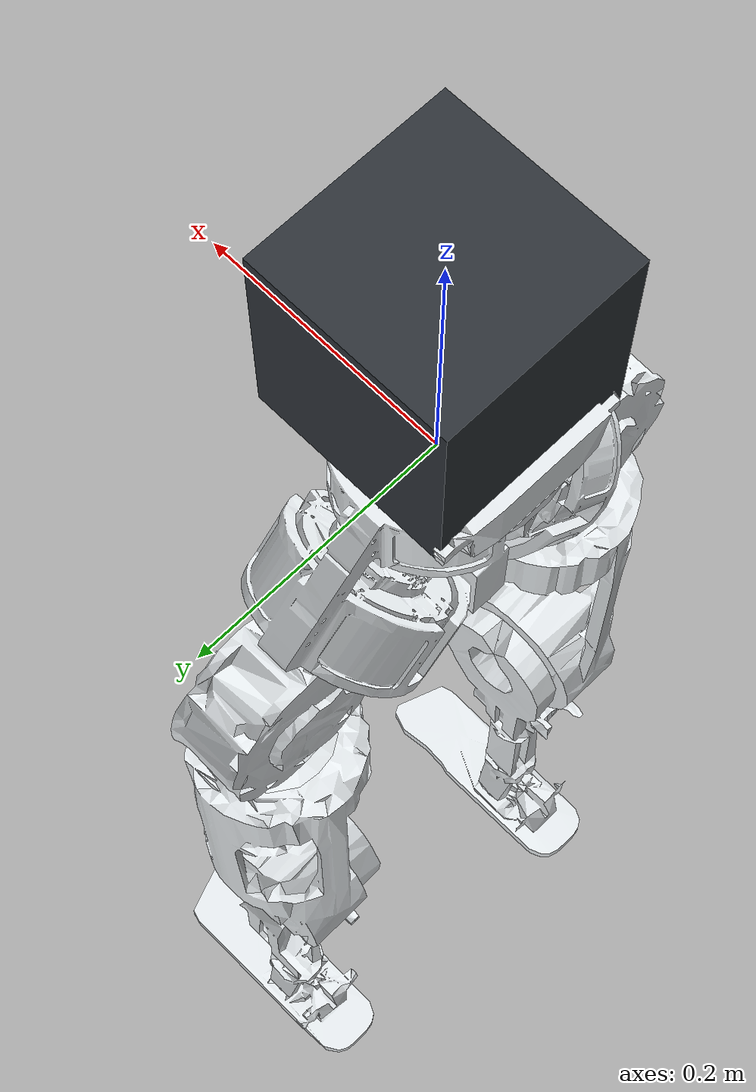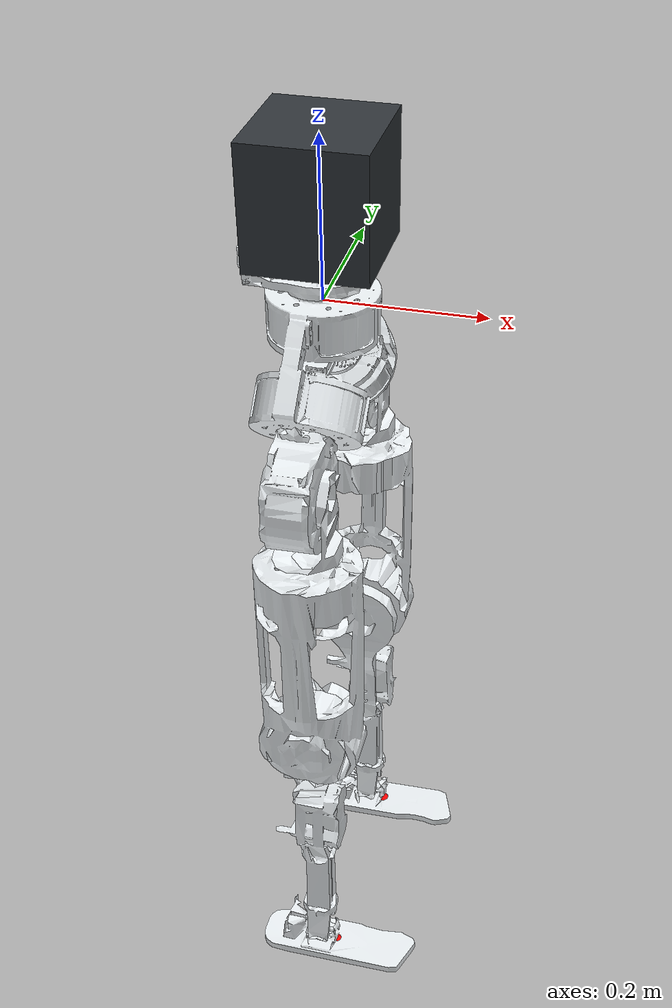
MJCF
<mujoco model="lowbody_capsule">
  <compiler angle="radian" meshdir="assets/" />
  <asset>
    <mesh name="base_link" file="base_link.STL" />
    <mesh name="waist_yaw_link" file="waist_yaw_link.STL" />
    <mesh name="waist_roll_link" file="waist_roll_link.STL" />
    <mesh name="left_hip_pitch_link" file="left_hip_pitch_link.STL" />
    <mesh name="left_hip_roll_link" file="left_hip_roll_link.STL" />
    <mesh name="left_hip_yaw_link" file="left_hip_yaw_link.STL" />
    <mesh name="left_knee_link" file="left_knee_link.STL" />
    <mesh name="left_ankle_pitch_link" file="left_ankle_pitch_link.STL" />
    <mesh name="left_ankle_roll_link" file="left_ankle_roll_link.STL" />
    <mesh name="right_hip_pitch_link" file="right_hip_pitch_link.STL" />
    <mesh name="right_hip_roll_link" file="right_hip_roll_link.STL" />
    <mesh name="right_hip_yaw_link" file="right_hip_yaw_link.STL" />
    <mesh name="right_knee_link" file="right_knee_link.STL" />
    <mesh name="right_ankle_pitch_link" file="right_ankle_pitch_link.STL" />
    <mesh name="right_ankle_roll_link" file="right_ankle_roll_link.STL" />
    <material name="base_link_mat" rgba="0.898 0.9176 0.9294 1" specular="0" />
    <material name="waist_yaw_link_mat" rgba="0.898 0.9176 0.9294 1" specular="0" />
    <material name="waist_roll_link_mat" rgba="0.898 0.9176 0.9294 1" specular="0" />
    <material name="left_hip_pitch_link_mat" rgba="0.898 0.9176 0.9294 1" specular="0" />
    <material name="left_hip_roll_link_mat" rgba="0.898 0.9176 0.9294 1" specular="0" />
    <material name="left_hip_yaw_link_mat" rgba="0.898 0.9176 0.9294 1" specular="0" />
    <material name="left_knee_link_mat" rgba="0.898 0.9176 0.9294 1" specular="0" />
    <material name="left_ankle_pitch_link_mat" rgba="0.898 0.9176 0.9294 1" specular="0" />
    <material name="left_ankle_roll_link_mat" rgba="0.898 0.9176 0.9294 1" specular="0" />
    <material name="right_hip_pitch_link_mat" rgba="0.898 0.9176 0.9294 1" specular="0" />
    <material name="right_hip_roll_link_mat" rgba="0.898 0.9176 0.9294 1" specular="0" />
    <material name="right_hip_yaw_link_mat" rgba="0.898 0.9176 0.9294 1" specular="0" />
    <material name="right_knee_link_mat" rgba="0.898 0.9176 0.9294 1" specular="0" />
    <material name="right_ankle_pitch_link_mat" rgba="0.898 0.9176 0.9294 1" specular="0" />
    <material name="right_ankle_roll_link_mat" rgba="0.898 0.9176 0.9294 1" specular="0" />
    <material name="waist_payload_mat" rgba="0.18 0.2 0.22 1" specular="0" />
  </asset>

  <worldbody>
    <body name="base_link" pos="0 0 0">
      <freejoint/>
      <inertial
        pos="-0.0009132 0.000016 -0.0779084"
        mass="6.4215738"
        fullinertia="0.0186218 0.0112883 0.0157697 -0.0000004 -0.0000523 -0.0000001"
      />
      <geom pos="0 0 0" group="1" contype="0" conaffinity="0" material="base_link_mat" type="mesh" mesh="base_link" />
      <geom name="base_link_collision" pos="0 0 0" rgba="0.9373 0.2667 0.2667 1" group="3" contype="1" conaffinity="1" type="mesh" mesh="base_link" />
      <site name="imu_in_base_link" size="0.01" pos="-0.01 0 -0.09" group="5" rgba="1 0 0 1" />
      <body name="waist_payload_link" pos="0 0 0.135">
        <inertial pos="0 0 0" mass="4" diaginertia="0.015 0.015 0.015" />
        <geom
          name="waist_payload"
          pos="0 0 0"
          group="1"
          contype="0"
          conaffinity="0"
          material="waist_payload_mat"
          type="box"
          size="0.075 0.075 0.075"
        />
        <geom
          name="waist_payload_collision"
          pos="0 0 0"
          rgba="0.9373 0.2667 0.2667 1"
          group="3"
          contype="1"
          conaffinity="1"
          type="box"
          size="0.075 0.075 0.075"
        />
      </body>
      <body name="waist_yaw_link" pos="0 0 0.007">
        <inertial pos="-0.0259888 0 0.0360763" mass="0.9641464" fullinertia="0.0005716 0.0006786 0.001122 0 0.0000066 0"/>
        <geom pos="0 0 0" group="1" contype="0" conaffinity="0" material="waist_yaw_link_mat" type="mesh" mesh="waist_yaw_link" />
        <body name="waist_roll_link" pos="-0.027 0 0.062">
          <inertial pos="0.0269999 0 -0.0000001" mass="0.0365367" diaginertia="0.0000058 0.0000043 0.0000088"/>
          <geom pos="0 0 0" group="1" contype="0" conaffinity="0" material="waist_roll_link_mat" type="mesh" mesh="waist_roll_link" />
        </body>
      </body>
      <body name="left_hip_pitch_link" pos="0 0.088214 -0.12639">
        <joint name="left_hip_pitch_joint" type="hinge" axis="0 0.70711 -0.70711" limited="true" range="-2.384 2.466" damping="0" frictionloss="0"/>
        <inertial pos="0.0035805 0.0540167 -0.053752" mass="2.0704946" fullinertia="0.003699 0.0023631 0.0023682 -0.0000151 0.0000149 -0.0004567"/>
        <geom pos="0 0 0" group="1" contype="0" conaffinity="0" material="left_hip_pitch_link_mat" type="mesh" mesh="left_hip_pitch_link" />
        <geom name="left_hip_pitch_link_collision" pos="0 0.05 -0.05" quat="0.7073883 0 0.7068252 0" rgba="0.9373 0.2667 0.2667 1" group="3" contype="1" conaffinity="1" type="cylinder" size="0.06 0.03" />
        <body name="left_hip_roll_link" pos="0.027 0.055861 -0.055861">
          <joint name="left_hip_roll_joint" type="hinge" axis="1 0 0" limited="true" range="-1.165 2.465" damping="0" frictionloss="0"/>
          <inertial pos="0.0017332 -0.0000073 -0.052578" mass="0.4695347" fullinertia="0.0010247 0.0010028 0.0003931 0 -0.0001714 -0.0000001"/>
          <geom pos="0 0 0" group="1" contype="0" conaffinity="0" material="left_hip_roll_link_mat" type="mesh" mesh="left_hip_roll_link" />
          <geom name="left_hip_roll_link_collision" pos="0 0 0" rgba="0.9373 0.2667 0.2667 1" group="3" contype="1" conaffinity="1" type="mesh" mesh="left_hip_roll_link" />
          <body name="left_hip_yaw_link" pos="-0.015 0 -0.105">
            <joint name="left_hip_yaw_joint" type="hinge" axis="0 0 -1" limited="true" range="-1.50 1.50" damping="0" frictionloss="0"/>
            <inertial pos="0.0000384 0.0106394 -0.1631784" mass="4.8993124" fullinertia="0.0057826 0.0097895 0.0088616 -0.0000083 0.000007 -0.0001901"/>
            <geom pos="0 0 0" group="1" contype="0" conaffinity="0" material="left_hip_yaw_link_mat" type="mesh" mesh="left_hip_yaw_link" />
            <geom name="left_hip_yaw_link_collision" pos="0 0 0" rgba="0.9373 0.2667 0.2667 1" group="3" contype="1" conaffinity="1" type="mesh" mesh="left_hip_yaw_link" />
            <body name="left_knee_link" pos="0 -0.012 -0.301">
              <joint name="left_knee_joint" type="hinge" axis="0 -1 0" limited="true" range="-1.699 1.997" damping="0" frictionloss="0"/>
              <inertial pos="0.0047746 0.0104878 -0.1607825" mass="2.0978379" fullinertia="0.0084628 0.0083387 0.0014631 0.000008 0.0000303 0.0014205"/>
              <geom pos="0 0 0" group="1" contype="0" conaffinity="0" material="left_knee_link_mat" type="mesh" mesh="left_knee_link" />
              <geom name="left_knee_link_collision" pos="0 0 0" rgba="0.9373 0.2667 0.2667 1" group="3" contype="1" conaffinity="1" type="mesh" mesh="left_knee_link" />
              <body name="left_ankle_pitch_link" pos="0.007722 -0.0037 -0.42591">
                <joint name="left_ankle_pitch_joint" type="hinge" axis="0 -1 0" limited="true" range="-0.2 0.2" damping="0" frictionloss="0"/>
                <inertial pos="-0.0000001 0.0257 0.0000001" mass="0.0365367" fullinertia="0.0000058 0.0000043 0.0000088 0 -0.0000001 0"/>
                <geom pos="0 0 0" group="1" contype="0" conaffinity="0" material="left_ankle_pitch_link_mat" type="mesh" mesh="left_ankle_pitch_link" />
                <geom name="left_ankle_pitch_link_collision" pos="0 0 0" rgba="0.9373 0.2667 0.2667 1" group="3" contype="1" conaffinity="1" type="mesh" mesh="left_ankle_pitch_link" />
                <body name="left_ankle_roll_link" pos="0.024 0.0257 0">
                  <site name="left_foot" size="0.01" pos="0 0 -0.032" rgba="1 0 0 1"/>
                  <joint name="left_ankle_roll_joint" type="hinge" axis="1 0 0" limited="true" range="-0.1 0.1" damping="0" frictionloss="0"/>
                  <inertial pos="-0.0114404 0.0000497 -0.0253569" mass="0.6753837" fullinertia="0.0002449 0.002171 0.0023523 0.0000064 -0.0000551 0.0000002"/>
                  <geom pos="0 0 0" group="1" contype="0" conaffinity="0" material="left_ankle_roll_link_mat" type="mesh" mesh="left_ankle_roll_link" />
                  <geom name="left_foot1_collision" fromto="-0.10 0.028 -0.033 0.10 0.028 -0.032" rgba="0.9373 0.2667 0.2667 1" group="3" contype="1" conaffinity="1" type="capsule" size="0.008" />
                  <geom name="left_foot2_collision" fromto="-0.10 -0.028 -0.033 0.115 -0.028 -0.032" rgba="0.9373 0.2667 0.2667 1" group="3" contype="1" conaffinity="1" type="capsule" size="0.008" />
                  <geom name="left_foot3_collision" fromto="-0.107 0 -0.033 0.11 0 -0.032" rgba="0.9373 0.2667 0.2667 1" group="3" contype="1" conaffinity="1" type="capsule" size="0.008" />
                  <geom name="left_foot4_collision" fromto="-0.107 0.014 -0.033 0.102 0.014 -0.032" rgba="0.9373 0.2667 0.2667 1" group="3" contype="1" conaffinity="1" type="capsule" size="0.008" />
                  <geom name="left_foot5_collision" fromto="-0.107 -0.014 -0.033 0.115 -0.014 -0.032" rgba="0.9373 0.2667 0.2667 1" group="3" contype="1" conaffinity="1" type="capsule" size="0.008" />
                </body>
              </body>
            </body>
          </body>
        </body>
      </body>
      <body name="right_hip_pitch_link" pos="0 -0.083263 -0.12144">
        <joint name="right_hip_pitch_joint" type="hinge" axis="0 -0.70711 -0.70711" limited="true" range="-1.175 2.84" damping="0" frictionloss="0"/>
        <inertial pos="0.003577 -0.0589637 -0.0587112" mass="2.0699965" fullinertia="0.0036971 0.0023675 0.0023618 0.0000153 0.0000148 0.0004558"/>
        <geom pos="0 0 0" group="1" contype="0" conaffinity="0" material="right_hip_pitch_link_mat" type="mesh" mesh="right_hip_pitch_link" />
        <geom name="right_hip_pitch_link_collision" pos="0 -0.06 -0.05" quat="0.7073883 0 0.7068252 0" rgba="0.9373 0.2667 0.2667 1" group="3" contype="1" conaffinity="1" type="cylinder" size="0.06 0.03" />
        <body name="right_hip_roll_link" pos="0.02 -0.060812 -0.06081">
          <joint name="right_hip_roll_joint" type="hinge" axis="1 0 0" limited="true" range="-2.506 1.043" damping="0" frictionloss="0"/>
          <inertial pos="0.0087332 -0.0000069 -0.052579" mass="0.4695347" fullinertia="0.0010247 0.0010028 0.0003931 0 -0.0001714 -0.0000001"/>
          <geom pos="0 0 0" group="1" contype="0" conaffinity="0" material="right_hip_roll_link_mat" type="mesh" mesh="right_hip_roll_link" />
          <geom name="right_hip_roll_link_collision" pos="0 0 0" rgba="0.9373 0.2667 0.2667 1" group="3" contype="1" conaffinity="1" type="mesh" mesh="right_hip_roll_link" />
          <body name="right_hip_yaw_link" pos="-0.008 0 -0.104">
            <joint name="right_hip_yaw_joint" type="hinge" axis="0 0 -1" limited="true" range="-1.50 1.50" damping="0" frictionloss="0"/>
            <inertial pos="-0.0000385 -0.0106489 -0.1642971" mass="4.8951529" fullinertia="0.0057824 0.0097895 0.0088615 -0.0000083 -0.000007 0.0001901"/>
            <geom pos="0 0 0" group="1" contype="0" conaffinity="0" material="right_hip_yaw_link_mat" type="mesh" mesh="right_hip_yaw_link" />
            <geom name="right_hip_yaw_link_collision" pos="0 0 0" rgba="0.9373 0.2667 0.2667 1" group="3" contype="1" conaffinity="1" type="mesh" mesh="right_hip_yaw_link" />
            <body name="right_knee_link" pos="0 0.0062 -0.30201">
              <joint name="right_knee_joint" type="hinge" axis="0 1 0" limited="true" range="-2.0056 1.9842" damping="0" frictionloss="0"/>
              <inertial pos="0.0022851 -0.0042143 -0.1581595" mass="2.1310136" fullinertia="0.0086276 0.0085109 0.0014881 -0.0000292 -0.0000626 -0.001453"/>
              <geom pos="0 0 0" group="1" contype="0" conaffinity="0" material="right_knee_link_mat" type="mesh" mesh="right_knee_link" />
              <geom name="right_knee_link_collision" pos="0 0 0" rgba="0.9373 0.2667 0.2667 1" group="3" contype="1" conaffinity="1" type="mesh" mesh="right_knee_link" />
              <body name="right_ankle_pitch_link" pos="0.0030006 -0.0419 -0.42596">
                <joint name="right_ankle_pitch_joint" type="hinge" axis="0 1 0" limited="true" range="-0.20 0.20" damping="0" frictionloss="0"/>
                <inertial pos="0.0000001 0.0257 0.0000001" mass="0.0365367" diaginertia="0.0000058 0.0000043 0.0000088"/>
                <geom pos="0 0 0" group="1" contype="0" conaffinity="0" material="right_ankle_pitch_link_mat" type="mesh" mesh="right_ankle_pitch_link" />
                <geom name="right_ankle_pitch_link_collision" pos="0 0 0" rgba="0.9373 0.2667 0.2667 1" group="3" contype="1" conaffinity="1" type="mesh" mesh="right_ankle_pitch_link" />
                <body name="right_ankle_roll_link" pos="0.024 0.0257 0">
                  <site name="right_foot" size="0.01" pos="0 0 -0.032" rgba="1 0 0 1"/>
                  <joint name="right_ankle_roll_joint" type="hinge" axis="-1 0 0" limited="true" range="-0.10 0.10" damping="0" frictionloss="0"/>
                  <inertial pos="-0.01299 -0.0000665 -0.0250404" mass="0.6758881" fullinertia="0.0002437 0.0021644 0.0023471 -0.0000064 -0.0000021 0"/>
                  <geom pos="0 0 0" group="1" contype="0" conaffinity="0" material="right_ankle_roll_link_mat" type="mesh" mesh="right_ankle_roll_link" />
                  <geom name="right_foot1_collision" fromto="-0.10 0.028 -0.033 0.115 0.028 -0.032" rgba="0.9373 0.2667 0.2667 1" group="3" contype="1" conaffinity="1" type="capsule" size="0.008" />
                  <geom name="right_foot2_collision" fromto="-0.10 -0.028 -0.033 0.10 -0.028 -0.032" rgba="0.9373 0.2667 0.2667 1" group="3" contype="1" conaffinity="1" type="capsule" size="0.008" />
                  <geom name="right_foot3_collision" fromto="-0.107 0 -0.033 0.11 0 -0.032" rgba="0.9373 0.2667 0.2667 1" group="3" contype="1" conaffinity="1" type="capsule" size="0.008" />
                  <geom name="right_foot4_collision" fromto="-0.107 0.014 -0.033 0.115 0.014 -0.032" rgba="0.9373 0.2667 0.2667 1" group="3" contype="1" conaffinity="1" type="capsule" size="0.008" />
                  <geom name="right_foot5_collision" fromto="-0.107 -0.014 -0.033 0.102 -0.014 -0.032" rgba="0.9373 0.2667 0.2667 1" group="3" contype="1" conaffinity="1" type="capsule" size="0.008" />
                </body>
              </body>
            </body>
          </body>
        </body>
      </body>
    </body>
  </worldbody>
  <actuator>
    <position name="left_hip_pitch_joint_servo" joint="left_hip_pitch_joint" kp="100" forcelimited="true" forcerange="-200 200" />
    <position name="left_hip_roll_joint_servo" joint="left_hip_roll_joint" kp="100" forcelimited="true" forcerange="-200 200" />
    <position name="left_hip_yaw_joint_servo" joint="left_hip_yaw_joint" kp="100" forcelimited="true" forcerange="-200 200" />
    <position name="left_knee_joint_servo" joint="left_knee_joint" kp="100" forcelimited="true" forcerange="-200 200" />
    <position name="left_ankle_pitch_joint_servo" joint="left_ankle_pitch_joint" kp="14" forcelimited="true" forcerange="-28 28" />
    <position name="left_ankle_roll_joint_servo" joint="left_ankle_roll_joint" kp="14" forcelimited="true" forcerange="-28 28" />
    <position name="right_hip_pitch_joint_servo" joint="right_hip_pitch_joint" kp="100" forcelimited="true" forcerange="-200 200" />
    <position name="right_hip_roll_joint_servo" joint="right_hip_roll_joint" kp="100" forcelimited="true" forcerange="-200 200" />
    <position name="right_hip_yaw_joint_servo" joint="right_hip_yaw_joint" kp="100" forcelimited="true" forcerange="-200 200" />
    <position name="right_knee_joint_servo" joint="right_knee_joint" kp="100" forcelimited="true" forcerange="-200 200" />
    <position name="right_ankle_pitch_joint_servo" joint="right_ankle_pitch_joint" kp="14" forcelimited="true" forcerange="-28 28" />
    <position name="right_ankle_roll_joint_servo" joint="right_ankle_roll_joint" kp="14" forcelimited="true" forcerange="-28 28" />
  </actuator>
  <sensor>
    <gyro name="imu_ang_vel" site="imu_in_base_link"/>
    <velocimeter name="imu_lin_vel" site="imu_in_base_link"/>
    <accelerometer name="imu_lin_acc" site="imu_in_base_link"/>
    <framezaxis name="imu_upvector" objtype="body" objname="world" reftype="site" refname="imu_in_base_link"/>
    <subtreeangmom name="root_angmom" body="base_link"/>
  </sensor>
</mujoco>
